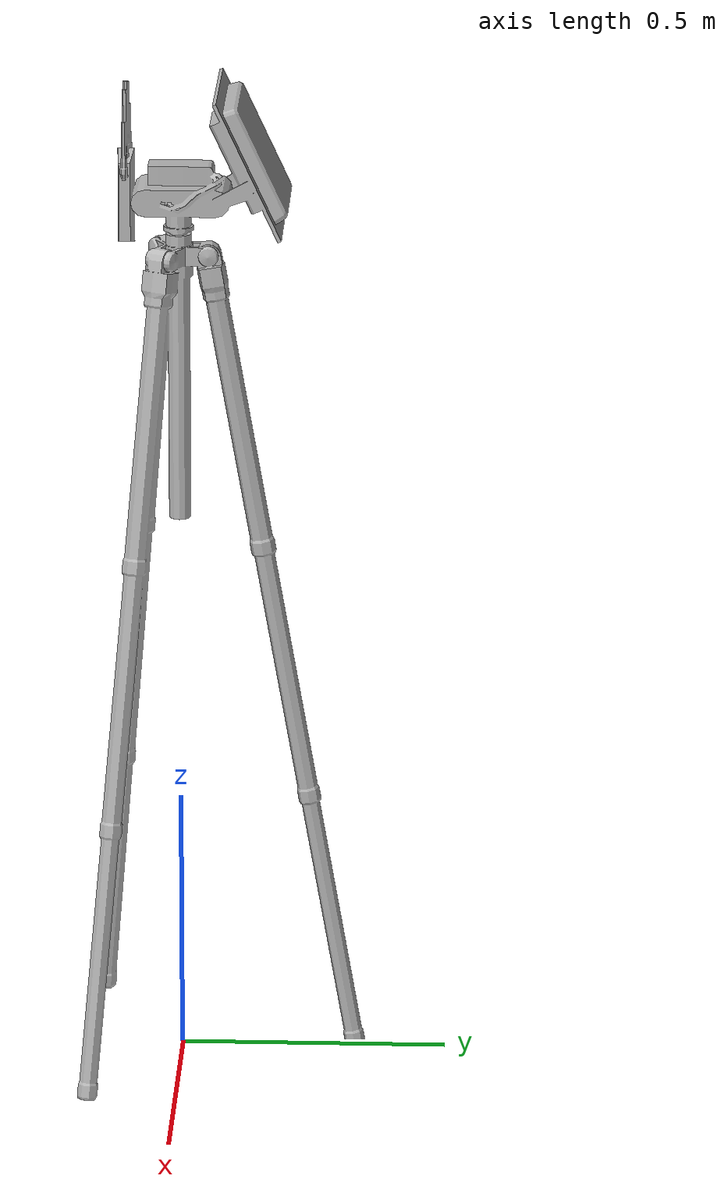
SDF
<?xml version="1.0"?>
<sdf version="1.6">
  <model name="antenna">
    <static>true</static>
    <link name="base_link">
      <visual name="visual">
        <geometry>
           <mesh>
            <uri>file://antenna/meshes/antenna.dae</uri>
          </mesh>
        </geometry>
      </visual>
      <collision name="collision">
        <pose>0 0 0.95 0 0 0</pose>
        <geometry>
          <cylinder>
            <radius>0.35</radius>
            <length>1.9</length>
          </cylinder>
        </geometry>
      </collision>
    </link>
  </model>
</sdf>
